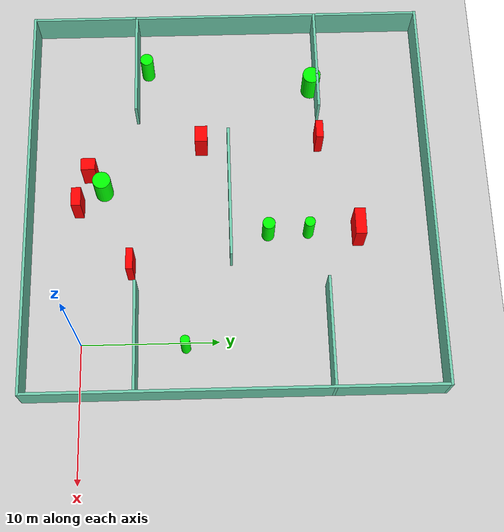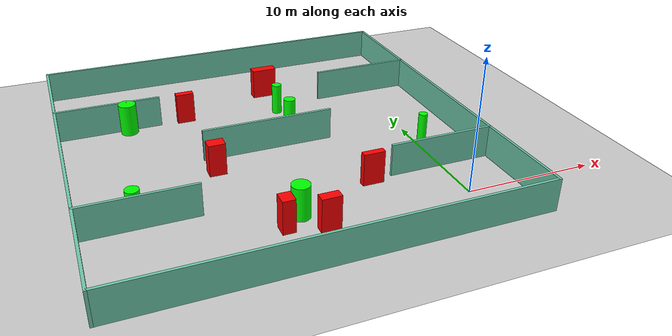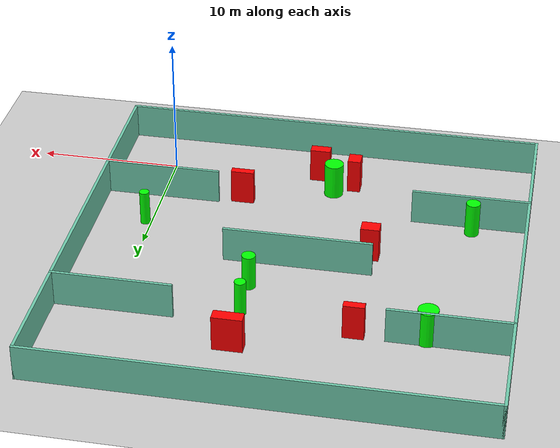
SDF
<sdf version="1.7">
 <world name="default">
  <light name="sun" type="directional">
   <pose>0 0 10 0 -0 0</pose>
   <diffuse>0.8 0.8 0.8 1</diffuse>
   <specular>0.2 0.2 0.2 1</specular>
   <attenuation>
    <range>1000</range>
    <constant>0.9</constant>
    <linear>0.01</linear>
    <quadratic>0.001</quadratic>
   </attenuation>
   <direction>-0.5 0.1 -0.9</direction>
   <spot><inner_angle>0</inner_angle><outer_angle>0</outer_angle><falloff>0</falloff></spot>
  </light>
  <model name="ground_plane">
   <static>1</static>
   <link name="link">
    <collision name="collision">
     <geometry><plane><normal>0 0 1</normal><size>100 100</size></plane></geometry>
     <surface>
      <contact><collide_bitmask>65535</collide_bitmask></contact>
      <friction><ode><mu>100</mu><mu2>50</mu2></ode></friction>
     </surface>
    </collision>
    <visual name="visual">
     <cast_shadows>0</cast_shadows>
     <geometry><plane><normal>0 0 1</normal><size>100 100</size></plane></geometry>
     <material>
      <script><uri>file://media/materials/scripts/gazebo.material</uri><name>Gazebo/Grey</name></script>
     </material>
    </visual>
   </link>
  </model>
  <gravity>0 0 -9.8</gravity>
  <magnetic_field>6e-06 2.3e-05 -4.2e-05</magnetic_field>
  <atmosphere type="adiabatic"/>
  <physics type="ode">
   <max_step_size>0.001</max_step_size>
   <real_time_factor>1</real_time_factor>
   <real_time_update_rate>1000</real_time_update_rate>
  </physics>
  <scene><ambient>0.4 0.4 0.4 1</ambient><background>0.7 0.7 0.7 1</background><shadows>1</shadows></scene>
  <spherical_coordinates>
   <surface_model>EARTH_WGS84</surface_model>
   <latitude_deg>0</latitude_deg>
   <longitude_deg>0</longitude_deg>
   <elevation>0</elevation>
   <heading_deg>0</heading_deg>
  </spherical_coordinates>
  <model name="my_base_walls">
   <link name="Wall_10">
    <collision name="Wall_10_Collision">
     <geometry><box><size>8.2 0.2 2.5</size></box></geometry>
     <pose>0 0 1.25 0 -0 0</pose>
    </collision>
    <visual name="Wall_10_Visual">
     <pose>0 0 1.25 0 -0 0</pose>
     <geometry><box><size>8.2 0.2 2.5</size></box></geometry>
     <material>
      <script><uri>file://media/materials/scripts/gazebo.material</uri><name>Gazebo/Grey</name></script>
      <ambient>0.435294 0.796078 0.67451 1</ambient>
     </material>
     <meta><layer>0</layer></meta>
    </visual>
    <pose>-11 -7 0 0 -0 0</pose>
   </link>
   <link name="Wall_12">
    <collision name="Wall_12_Collision">
     <geometry><box><size>8.2 0.2 2.5</size></box></geometry>
     <pose>0 0 1.25 0 -0 0</pose>
    </collision>
    <visual name="Wall_12_Visual">
     <pose>0 0 1.25 0 -0 0</pose>
     <geometry><box><size>8.2 0.2 2.5</size></box></geometry>
     <material>
      <script><uri>file://media/materials/scripts/gazebo.material</uri><name>Gazebo/Grey</name></script>
      <ambient>0.435294 0.796078 0.67451 1</ambient>
     </material>
     <meta><layer>0</layer></meta>
    </visual>
    <pose>-11 7 0 0 -0 0</pose>
   </link>
   <link name="Wall_14">
    <collision name="Wall_14_Collision">
     <geometry><box><size>8.2 0.2 2.5</size></box></geometry>
     <pose>0 0 1.25 0 -0 0</pose>
    </collision>
    <visual name="Wall_14_Visual">
     <pose>0 0 1.25 0 -0 0</pose>
     <geometry><box><size>8.2 0.2 2.5</size></box></geometry>
     <material>
      <script><uri>file://media/materials/scripts/gazebo.material</uri><name>Gazebo/Grey</name></script>
      <ambient>0.435294 0.796078 0.67451 1</ambient>
     </material>
     <meta><layer>0</layer></meta>
    </visual>
    <pose>11 7 0 0 -0 3.14159</pose>
   </link>
   <link name="Wall_16">
    <collision name="Wall_16_Collision">
     <geometry><box><size>10.2 0.2 2.5</size></box></geometry>
     <pose>0 0 1.25 0 -0 0</pose>
    </collision>
    <visual name="Wall_16_Visual">
     <pose>0 0 1.25 0 -0 0</pose>
     <geometry><box><size>10.2 0.2 2.5</size></box></geometry>
     <material>
      <script><uri>file://media/materials/scripts/gazebo.material</uri><name>Gazebo/Grey</name></script>
      <ambient>0.435294 0.796078 0.67451 1</ambient>
     </material>
     <meta><layer>0</layer></meta>
    </visual>
    <pose>0 0 0 0 -0 3.14159</pose>
   </link>
   <link name="Wall_2">
    <collision name="Wall_2_Collision">
     <geometry><box><size>30.2 0.2 2.5</size></box></geometry>
     <pose>0 0 1.25 0 -0 0</pose>
    </collision>
    <visual name="Wall_2_Visual">
     <pose>0 0 1.25 0 -0 0</pose>
     <geometry><box><size>30.2 0.2 2.5</size></box></geometry>
     <material>
      <script><uri>file://media/materials/scripts/gazebo.material</uri><name>Gazebo/Grey</name></script>
      <ambient>0.435294 0.796078 0.67451 1</ambient>
     </material>
     <meta><layer>0</layer></meta>
    </visual>
    <pose>0 -15 0 0 -0 3.14159</pose>
   </link>
   <link name="Wall_3">
    <collision name="Wall_3_Collision">
     <geometry><box><size>30.2 0.2 2.5</size></box></geometry>
     <pose>0 0 1.25 0 -0 0</pose>
    </collision>
    <visual name="Wall_3_Visual">
     <pose>0 0 1.25 0 -0 0</pose>
     <geometry><box><size>30.2 0.2 2.5</size></box></geometry>
     <material>
      <script><uri>file://media/materials/scripts/gazebo.material</uri><name>Gazebo/Grey</name></script>
      <ambient>0.435294 0.796078 0.67451 1</ambient>
     </material>
     <meta><layer>0</layer></meta>
    </visual>
    <pose>-15 0 0 0 -0 1.5708</pose>
   </link>
   <link name="Wall_4">
    <collision name="Wall_4_Collision">
     <geometry><box><size>30.2 0.2 2.5</size></box></geometry>
     <pose>0 0 1.25 0 -0 0</pose>
    </collision>
    <visual name="Wall_4_Visual">
     <pose>0 0 1.25 0 -0 0</pose>
     <geometry><box><size>30.2 0.2 2.5</size></box></geometry>
     <material>
      <script><uri>file://media/materials/scripts/gazebo.material</uri><name>Gazebo/Grey</name></script>
      <ambient>0.435294 0.796078 0.67451 1</ambient>
     </material>
     <meta><layer>0</layer></meta>
    </visual>
    <pose>0 15 0 0 -0 0</pose>
   </link>
   <link name="Wall_6">
    <collision name="Wall_6_Collision">
     <geometry><box><size>30.2 0.2 2.5</size></box></geometry>
     <pose>0 0 1.25 0 -0 0</pose>
    </collision>
    <visual name="Wall_6_Visual">
     <pose>0 0 1.25 0 -0 0</pose>
     <geometry><box><size>30.2 0.2 2.5</size></box></geometry>
     <material>
      <script><uri>file://media/materials/scripts/gazebo.material</uri><name>Gazebo/Grey</name></script>
      <ambient>0.435294 0.796078 0.67451 1</ambient>
     </material>
     <meta><layer>0</layer></meta>
    </visual>
    <pose>15 0 0 0 -0 1.5708</pose>
   </link>
   <link name="Wall_8">
    <collision name="Wall_8_Collision">
     <geometry><box><size>8.2 0.2 2.5</size></box></geometry>
     <pose>0 0 1.25 0 -0 0</pose>
    </collision>
    <visual name="Wall_8_Visual">
     <pose>0 0 1.25 0 -0 0</pose>
     <geometry><box><size>8.2 0.2 2.5</size></box></geometry>
     <material>
      <script><uri>file://media/materials/scripts/gazebo.material</uri><name>Gazebo/Grey</name></script>
      <ambient>0.435294 0.796078 0.67451 1</ambient>
     </material>
     <meta><layer>0</layer></meta>
    </visual>
    <pose>11 -7 0 0 -0 3.14159</pose>
   </link>
   <static>1</static>
   <pose>-11 11 0 0 -0 0</pose>
  </model>
  <model name="cylinder1">
   <static>1</static>
   <link name="link">
    <inertial>
     <mass>1</mass>
     <inertia><ixx>0.5</ixx><ixy>0</ixy><ixz>0</ixz><iyy>0.5</iyy><iyz>0</iyz><izz>1</izz></inertia>
    </inertial>
    <collision name="collision">
     <geometry><cylinder><radius>0.49336312945878313</radius><length>2.5</length></cylinder></geometry>
    </collision>
    <visual name="visual">
     <geometry><cylinder><radius>0.49336312945878313</radius><length>2.5</length></cylinder></geometry>
     <material>
      <ambient>0 1 0 1</ambient>
      <diffuse>0 1 0 1</diffuse>
      <specular>0.1 0.1 0.1 1</specular>
      <emissive>0 0 0 0</emissive>
     </material>
    </visual>
   </link>
   <pose>-22.208010700015507 4.800829134579747 1.25 0 0 0</pose>
  </model>
  <model name="cylinder2">
   <static>1</static>
   <link name="link">
    <inertial>
     <mass>1</mass>
     <inertia><ixx>0.5</ixx><ixy>0</ixy><ixz>0</ixz><iyy>0.5</iyy><iyz>0</iyz><izz>1</izz></inertia>
    </inertial>
    <collision name="collision">
     <geometry><cylinder><radius>0.387424101563258</radius><length>2.5</length></cylinder></geometry>
    </collision>
    <visual name="visual">
     <geometry><cylinder><radius>0.387424101563258</radius><length>2.5</length></cylinder></geometry>
     <material>
      <ambient>0 1 0 1</ambient>
      <diffuse>0 1 0 1</diffuse>
      <specular>0.1 0.1 0.1 1</specular>
      <emissive>0 0 0 0</emissive>
     </material>
    </visual>
   </link>
   <pose>-8.295942054459655 16.82509893733765 1.25 0 0 0</pose>
  </model>
  <model name="cylinder3">
   <static>1</static>
   <link name="link">
    <inertial>
     <mass>1</mass>
     <inertia><ixx>0.5</ixx><ixy>0</ixy><ixz>0</ixz><iyy>0.5</iyy><iyz>0</iyz><izz>1</izz></inertia>
    </inertial>
    <collision name="collision">
     <geometry><cylinder><radius>0.6833424584121982</radius><length>2.5</length></cylinder></geometry>
    </collision>
    <visual name="visual">
     <geometry><cylinder><radius>0.6833424584121982</radius><length>2.5</length></cylinder></geometry>
     <material>
      <ambient>0 1 0 1</ambient>
      <diffuse>0 1 0 1</diffuse>
      <specular>0.1 0.1 0.1 1</specular>
      <emissive>0 0 0 0</emissive>
     </material>
    </visual>
   </link>
   <pose>-20.538587891556652 17.576639881300586 1.25 0 0 0</pose>
  </model>
  <model name="cylinder4">
   <static>1</static>
   <link name="link">
    <inertial>
     <mass>1</mass>
     <inertia><ixx>0.5</ixx><ixy>0</ixy><ixz>0</ixz><iyy>0.5</iyy><iyz>0</iyz><izz>1</izz></inertia>
    </inertial>
    <collision name="collision">
     <geometry><cylinder><radius>0.34306826990653</radius><length>2.5</length></cylinder></geometry>
    </collision>
    <visual name="visual">
     <geometry><cylinder><radius>0.34306826990653</radius><length>2.5</length></cylinder></geometry>
     <material>
      <ambient>0 1 0 1</ambient>
      <diffuse>0 1 0 1</diffuse>
      <specular>0.1 0.1 0.1 1</specular>
      <emissive>0 0 0 0</emissive>
     </material>
    </visual>
   </link>
   <pose>0.42266703796924787 7.578664803807641 1.25 0 0 0</pose>
  </model>
  <model name="cylinder5">
   <static>1</static>
   <link name="link">
    <inertial>
     <mass>1</mass>
     <inertia><ixx>0.5</ixx><ixy>0</ixy><ixz>0</ixz><iyy>0.5</iyy><iyz>0</iyz><izz>1</izz></inertia>
    </inertial>
    <collision name="collision">
     <geometry><cylinder><radius>0.4653892934841711</radius><length>2.5</length></cylinder></geometry>
    </collision>
    <visual name="visual">
     <geometry><cylinder><radius>0.4653892934841711</radius><length>2.5</length></cylinder></geometry>
     <material>
      <ambient>0 1 0 1</ambient>
      <diffuse>0 1 0 1</diffuse>
      <specular>0.1 0.1 0.1 1</specular>
      <emissive>0 0 0 0</emissive>
     </material>
    </visual>
   </link>
   <pose>-8.242935438724192 13.808564494317334 1.25 0 0 0</pose>
  </model>
  <model name="cylinder6">
   <static>1</static>
   <link name="link">
    <inertial>
     <mass>1</mass>
     <inertia><ixx>0.5</ixx><ixy>0</ixy><ixz>0</ixz><iyy>0.5</iyy><iyz>0</iyz><izz>1</izz></inertia>
    </inertial>
    <collision name="collision">
     <geometry><cylinder><radius>0.6715387015742015</radius><length>2.5</length></cylinder></geometry>
    </collision>
    <visual name="visual">
     <geometry><cylinder><radius>0.6715387015742015</radius><length>2.5</length></cylinder></geometry>
     <material>
      <ambient>0 1 0 1</ambient>
      <diffuse>0 1 0 1</diffuse>
      <specular>0.1 0.1 0.1 1</specular>
      <emissive>0 0 0 0</emissive>
     </material>
    </visual>
   </link>
   <pose>-11.980613307149815 1.4746100422685977 1.25 0 0 0</pose>
  </model>
  <model name="box1">
   <static>1</static>
   <link name="link">
    <inertial>
     <mass>1</mass>
     <inertia><ixx>0.083</ixx><ixy>0</ixy><ixz>0</ixz><iyy>0.083</iyy><iyz>0</iyz><izz>0.083</izz></inertia>
    </inertial>
    <collision name="collision">
     <geometry><box><size>1.4238737017107905 0.7191706632871145 2.5</size></box></geometry>
    </collision>
    <visual name="visual">
     <geometry><box><size>1.4238737017107905 0.7191706632871145 2.5</size></box></geometry>
     <material>
      <ambient>1 0 0 1</ambient>
      <diffuse>1 0 0 1</diffuse>
      <specular>0.1 0.1 0.1 1</specular>
      <emissive>0 0 0 0</emissive>
     </material>
    </visual>
    <sensor name="my_contact" type="contact">
     <contact><collision>box_collision</collision><topic>__default_topic__</topic></contact>
    </sensor>
   </link>
   <pose>-10.719933662078823 -0.3843309881874961 1.25 0 0 0</pose>
  </model>
  <model name="box2">
   <static>1</static>
   <link name="link">
    <inertial>
     <mass>1</mass>
     <inertia><ixx>0.083</ixx><ixy>0</ixy><ixz>0</ixz><iyy>0.083</iyy><iyz>0</iyz><izz>0.083</izz></inertia>
    </inertial>
    <collision name="collision">
     <geometry><box><size>1.4145863835764056 0.5529937825705162 2.5</size></box></geometry>
    </collision>
    <visual name="visual">
     <geometry><box><size>1.4145863835764056 0.5529937825705162 2.5</size></box></geometry>
     <material>
      <ambient>1 0 0 1</ambient>
      <diffuse>1 0 0 1</diffuse>
      <specular>0.1 0.1 0.1 1</specular>
      <emissive>0 0 0 0</emissive>
     </material>
    </visual>
    <sensor name="my_contact" type="contact">
     <contact><collision>box_collision</collision><topic>__default_topic__</topic></contact>
    </sensor>
   </link>
   <pose>-15.877194647024535 17.930194553671615 1.25 0 0 0</pose>
  </model>
  <model name="box3">
   <static>1</static>
   <link name="link">
    <inertial>
     <mass>1</mass>
     <inertia><ixx>0.083</ixx><ixy>0</ixy><ixz>0</ixz><iyy>0.083</iyy><iyz>0</iyz><izz>0.083</izz></inertia>
    </inertial>
    <collision name="collision">
     <geometry><box><size>1.6214696620268683 0.5087800804470533 2.5</size></box></geometry>
    </collision>
    <visual name="visual">
     <geometry><box><size>1.6214696620268683 0.5087800804470533 2.5</size></box></geometry>
     <material>
      <ambient>1 0 0 1</ambient>
      <diffuse>1 0 0 1</diffuse>
      <specular>0.1 0.1 0.1 1</specular>
      <emissive>0 0 0 0</emissive>
     </material>
    </visual>
    <sensor name="my_contact" type="contact">
     <contact><collision>box_collision</collision><topic>__default_topic__</topic></contact>
    </sensor>
   </link>
   <pose>-5.7599513428186295 3.5985152559464115 1.25 0 0 0</pose>
  </model>
  <model name="box4">
   <static>1</static>
   <link name="link">
    <inertial>
     <mass>1</mass>
     <inertia><ixx>0.083</ixx><ixy>0</ixy><ixz>0</ixz><iyy>0.083</iyy><iyz>0</iyz><izz>0.083</izz></inertia>
    </inertial>
    <collision name="collision">
     <geometry><box><size>2.0192795769842067 0.8075187399093959 2.5</size></box></geometry>
    </collision>
    <visual name="visual">
     <geometry><box><size>2.0192795769842067 0.8075187399093959 2.5</size></box></geometry>
     <material>
      <ambient>1 0 0 1</ambient>
      <diffuse>1 0 0 1</diffuse>
      <specular>0.1 0.1 0.1 1</specular>
      <emissive>0 0 0 0</emissive>
     </material>
    </visual>
    <sensor name="my_contact" type="contact">
     <contact><collision>box_collision</collision><topic>__default_topic__</topic></contact>
    </sensor>
   </link>
   <pose>-8.274914144341802 20.528448313156726 1.25 0 0 0</pose>
  </model>
  <model name="box5">
   <static>1</static>
   <link name="link">
    <inertial>
     <mass>1</mass>
     <inertia><ixx>0.083</ixx><ixy>0</ixy><ixz>0</ixz><iyy>0.083</iyy><iyz>0</iyz><izz>0.083</izz></inertia>
    </inertial>
    <collision name="collision">
     <geometry><box><size>1.2822481192429902 0.941814476949781 2.5</size></box></geometry>
    </collision>
    <visual name="visual">
     <geometry><box><size>1.2822481192429902 0.941814476949781 2.5</size></box></geometry>
     <material>
      <ambient>1 0 0 1</ambient>
      <diffuse>1 0 0 1</diffuse>
      <specular>0.1 0.1 0.1 1</specular>
      <emissive>0 0 0 0</emissive>
     </material>
    </visual>
    <sensor name="my_contact" type="contact">
     <contact><collision>box_collision</collision><topic>__default_topic__</topic></contact>
    </sensor>
   </link>
   <pose>-15.661509689545955 8.925646720561797 1.25 0 0 0</pose>
  </model>
  <model name="box6">
   <static>1</static>
   <link name="link">
    <inertial>
     <mass>1</mass>
     <inertia><ixx>0.083</ixx><ixy>0</ixy><ixz>0</ixz><iyy>0.083</iyy><iyz>0</iyz><izz>0.083</izz></inertia>
    </inertial>
    <collision name="collision">
     <geometry><box><size>0.9190513015213244 1.058506577676008 2.5</size></box></geometry>
    </collision>
    <visual name="visual">
     <geometry><box><size>0.9190513015213244 1.058506577676008 2.5</size></box></geometry>
     <material>
      <ambient>1 0 0 1</ambient>
      <diffuse>1 0 0 1</diffuse>
      <specular>0.1 0.1 0.1 1</specular>
      <emissive>0 0 0 0</emissive>
     </material>
    </visual>
    <sensor name="my_contact" type="contact">
     <contact><collision>box_collision</collision><topic>__default_topic__</topic></contact>
    </sensor>
   </link>
   <pose>-13.3395941960007 0.4483506771099175 1.25 0 0 0</pose>
  </model>
 </world>
</sdf>
